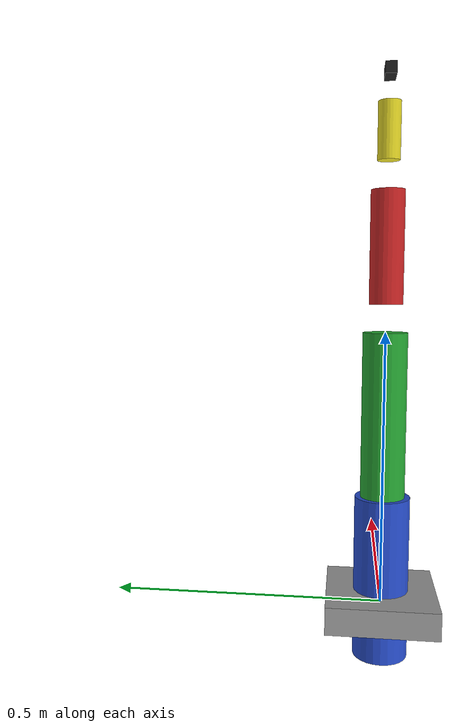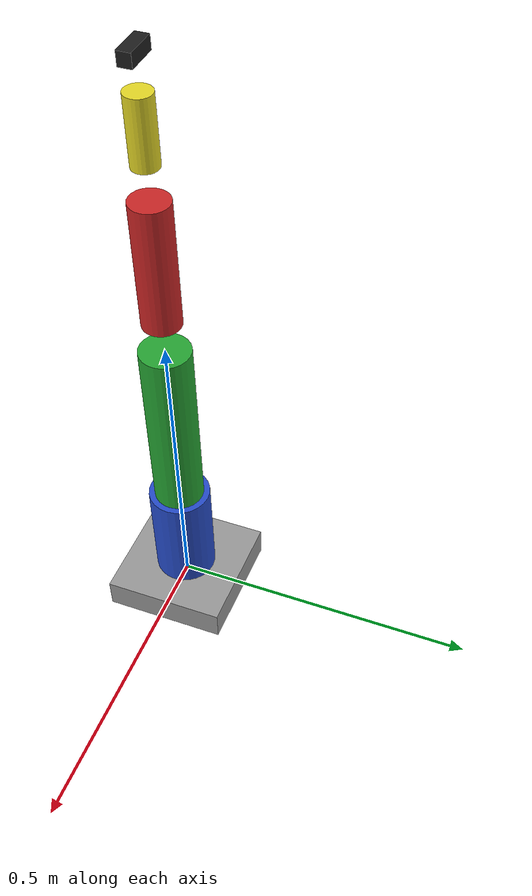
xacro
<?xml version="1.0"?>
<robot xmlns:xacro="http://www.ros.org/wiki/xacro" name="arm_robot">

  <!-- Base -->
  <link name="base_link">
    <visual>
      <geometry>
        <box size="0.2 0.2 0.05"/>
      </geometry>
      <material name="grey"/>
    </visual>
    <collision>
      <geometry>
        <box size="0.2 0.2 0.05"/>
      </geometry>
    </collision>
    <inertial>
      <mass value="1.0"/>
      <inertia ixx="0.01" iyy="0.01" izz="0.01" ixy="0" ixz="0" iyz="0"/>
    </inertial>
  </link>

  <!-- Joint 1 -->
  <link name="link1">
    <visual>
      <geometry>
        <cylinder length="0.3" radius="0.05"/>
      </geometry>
      <material name="blue"/>
    </visual>
  </link>
  <joint name="joint1" type="revolute">
    <parent link="base_link"/>
    <child link="link1"/>
    <origin xyz="0 0 0.05" rpy="0 0 0"/>
    <axis xyz="0 0 1"/>
    <limit lower="-1.57" upper="1.57" effort="10" velocity="1"/>
  </joint>

  <!-- Joint 2 -->
  <link name="link2">
    <visual>
      <geometry>
        <cylinder length="0.3" radius="0.04"/>
      </geometry>
      <material name="green"/>
    </visual>
  </link>
  <joint name="joint2" type="revolute">
    <parent link="link1"/>
    <child link="link2"/>
    <origin xyz="0 0 0.3" rpy="0 0 0"/>
    <axis xyz="0 1 0"/>
    <limit lower="-1.57" upper="1.57" effort="10" velocity="1"/>
  </joint>

  <!-- Joint 3 -->
  <link name="link3">
    <visual>
      <geometry>
        <cylinder length="0.2" radius="0.03"/>
      </geometry>
      <material name="red"/>
    </visual>
  </link>
  <joint name="joint3" type="revolute">
    <parent link="link2"/>
    <child link="link3"/>
    <origin xyz="0 0 0.3" rpy="0 0 0"/>
    <axis xyz="0 1 0"/>
    <limit lower="-1.57" upper="1.57" effort="10" velocity="1"/>
  </joint>

  <!-- Joint 4 (gripper base) -->
  <link name="link4">
    <visual>
      <geometry>
        <cylinder length="0.1" radius="0.02"/>
      </geometry>
      <material name="yellow"/>
    </visual>
  </link>
  <joint name="joint4" type="revolute">
    <parent link="link3"/>
    <child link="link4"/>
    <origin xyz="0 0 0.2" rpy="0 0 0"/>
    <axis xyz="0 1 0"/>
    <limit lower="-1.57" upper="1.57" effort="10" velocity="1"/>
  </joint>

  <!-- Gripper -->
  <link name="gripper">
    <visual>
      <geometry>
        <box size="0.05 0.02 0.02"/>
      </geometry>
      <material name="black"/>
    </visual>
  </link>
  <joint name="gripper_joint" type="prismatic">
    <parent link="link4"/>
    <child link="gripper"/>
    <origin xyz="0 0 0.1" rpy="0 0 0"/>
    <axis xyz="1 0 0"/>
    <limit lower="0.0" upper="0.02" effort="5" velocity="0.01"/>
  </joint>

</robot>
